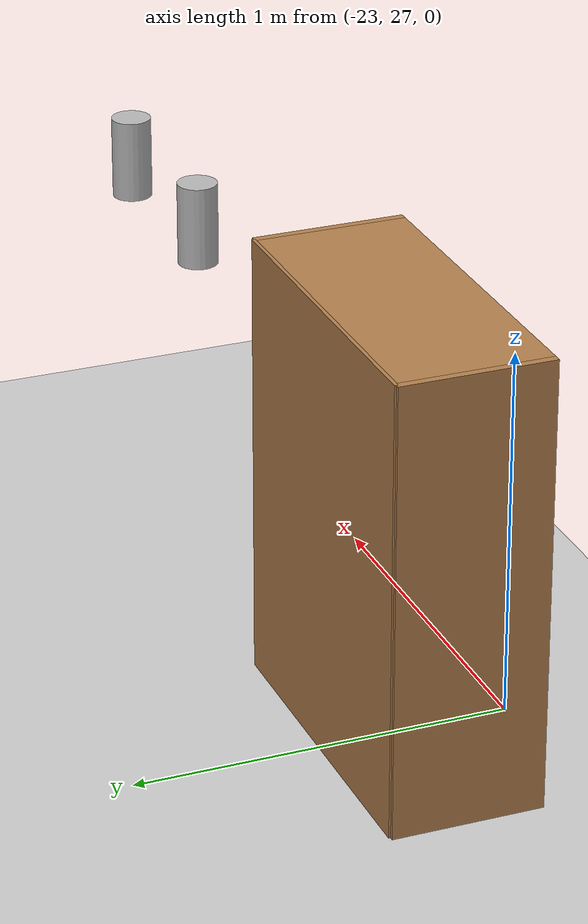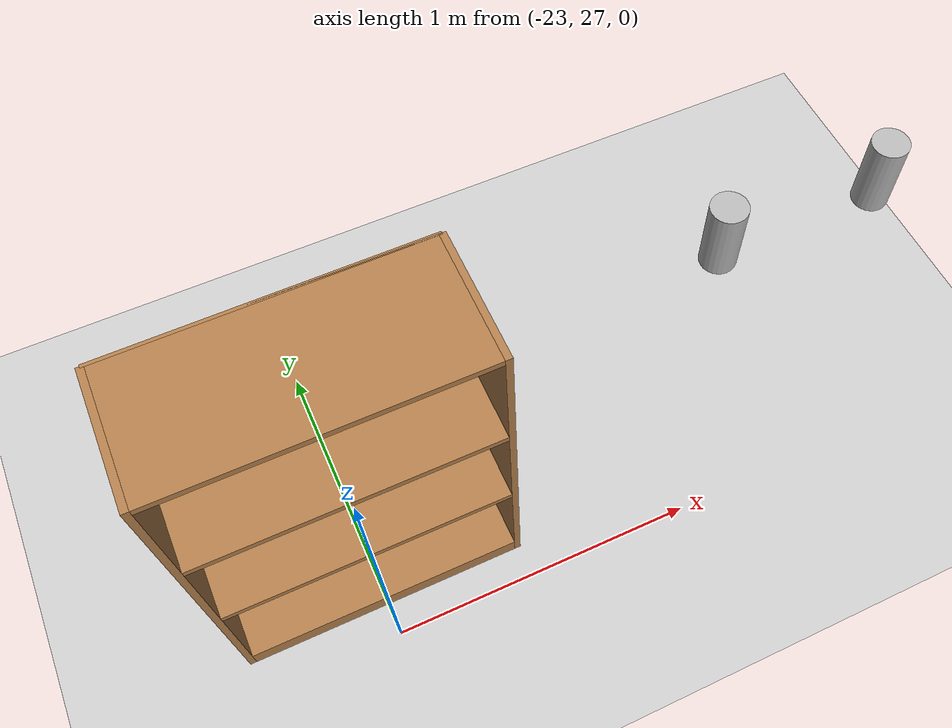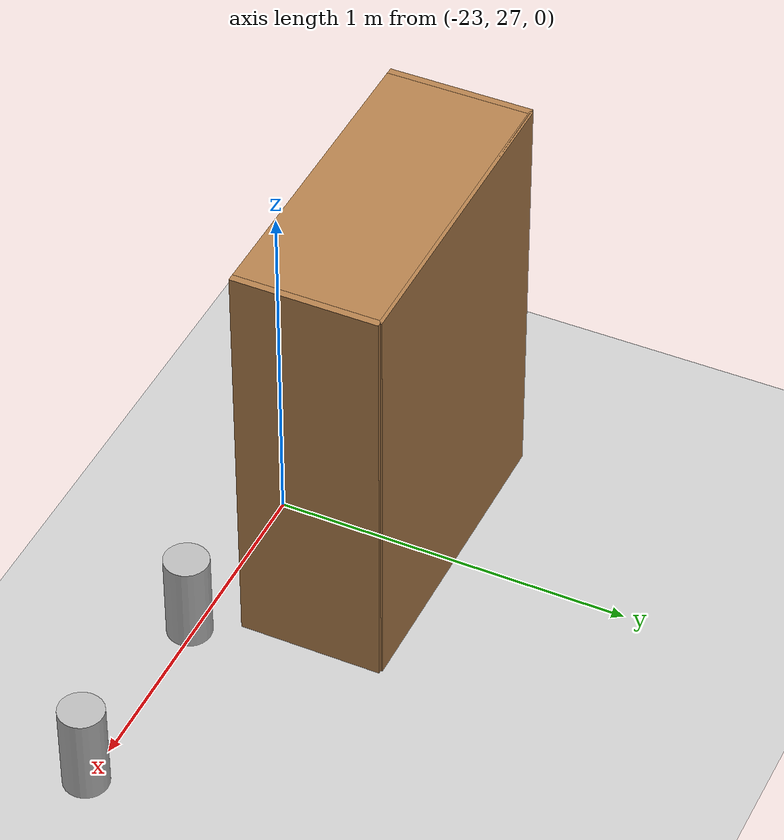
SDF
<sdf version="1.7">
 <world name="default">
  <model name="ground_plane">
   <static>1</static>
   <link name="link">
    <collision name="collision">
     <geometry><plane><normal>0 0 1</normal><size>100 100</size></plane></geometry>
     <surface>
      <contact><collide_bitmask>65535</collide_bitmask></contact>
      <friction><ode><mu>100</mu><mu2>50</mu2></ode></friction>
     </surface>
    </collision>
    <visual name="visual">
     <cast_shadows>0</cast_shadows>
     <geometry><plane><normal>0 0 1</normal><size>100 100</size></plane></geometry>
     <material>
      <script><uri>file://media/materials/scripts/gazebo.material</uri><name>Gazebo/Grey</name></script>
     </material>
    </visual>
   </link>
  </model>
  <model name="bookshelf_clone_clone_clone_3">
   <static>1</static>
   <link name="link">
    <inertial><mass>1</mass></inertial>
    <collision name="back">
     <pose>0 0.005 0.6 0 -0 0</pose>
     <geometry><box><size>0.9 0.01 1.2</size></box></geometry>
    </collision>
    <visual name="visual1">
     <pose>0 0.005 0.6 0 -0 0</pose>
     <geometry><box><size>0.9 0.01 1.2</size></box></geometry>
     <material>
      <script><uri>file://media/materials/scripts/gazebo.material</uri><name>Gazebo/Wood</name></script>
     </material>
    </visual>
    <collision name="left_side">
     <pose>0.45 -0.195 0.6 0 -0 0</pose>
     <geometry><box><size>0.02 0.4 1.2</size></box></geometry>
    </collision>
    <visual name="visual2">
     <pose>0.45 -0.195 0.6 0 -0 0</pose>
     <geometry><box><size>0.02 0.4 1.2</size></box></geometry>
     <material>
      <script><uri>file://media/materials/scripts/gazebo.material</uri><name>Gazebo/Wood</name></script>
     </material>
    </visual>
    <collision name="right_side">
     <pose>-0.45 -0.195 0.6 0 -0 0</pose>
     <geometry><box><size>0.02 0.4 1.2</size></box></geometry>
    </collision>
    <visual name="visual3">
     <pose>-0.45 -0.195 0.6 0 -0 0</pose>
     <geometry><box><size>0.02 0.4 1.2</size></box></geometry>
     <material>
      <script><uri>file://media/materials/scripts/gazebo.material</uri><name>Gazebo/Wood</name></script>
     </material>
    </visual>
    <collision name="bottom">
     <pose>0 -0.195 0.03 0 -0 0</pose>
     <geometry><box><size>0.88 0.4 0.06</size></box></geometry>
    </collision>
    <visual name="visual4">
     <pose>0 -0.195 0.03 0 -0 0</pose>
     <geometry><box><size>0.88 0.4 0.06</size></box></geometry>
     <material>
      <script><uri>file://media/materials/scripts/gazebo.material</uri><name>Gazebo/Wood</name></script>
     </material>
    </visual>
    <collision name="top">
     <pose>0 -0.195 1.19 0 -0 0</pose>
     <geometry><box><size>0.88 0.4 0.02</size></box></geometry>
    </collision>
    <visual name="visual5">
     <pose>0 -0.195 1.19 0 -0 0</pose>
     <geometry><box><size>0.88 0.4 0.02</size></box></geometry>
     <material>
      <script><uri>file://media/materials/scripts/gazebo.material</uri><name>Gazebo/Wood</name></script>
     </material>
    </visual>
    <collision name="low_shelf">
     <pose>0 -0.195 0.43 0 -0 0</pose>
     <geometry><box><size>0.88 0.4 0.02</size></box></geometry>
    </collision>
    <visual name="visual6">
     <pose>0 -0.195 0.43 0 -0 0</pose>
     <geometry><box><size>0.88 0.4 0.02</size></box></geometry>
     <material>
      <script><uri>file://media/materials/scripts/gazebo.material</uri><name>Gazebo/Wood</name></script>
     </material>
    </visual>
    <collision name="high_shelf">
     <pose>0 -0.195 0.8 0 -0 0</pose>
     <geometry><box><size>0.88 0.4 0.02</size></box></geometry>
    </collision>
    <visual name="visual7">
     <pose>0 -0.195 0.8 0 -0 0</pose>
     <geometry><box><size>0.88 0.4 0.02</size></box></geometry>
     <material>
      <script><uri>file://media/materials/scripts/gazebo.material</uri><name>Gazebo/Wood</name></script>
     </material>
    </visual>
   </link>
   <pose>-23 27.5 0 0 -0 0</pose>
  </model>
  <model name="beer_clone_9_clone_10_clone_0">
   <link name="link">
    <pose>0 0 0.115 0 -0 0</pose>
    <inertial>
     <mass>0.39</mass>
     <inertia><ixx>0.00058</ixx><ixy>0</ixy><ixz>0</ixz><iyy>0.00058</iyy><iyz>0</iyz><izz>0.00019</izz></inertia>
    </inertial>
    <collision name="collision">
     <geometry><cylinder><radius>0.055</radius><length>0.23</length></cylinder></geometry>
    </collision>
    <visual name="visual">
     <geometry><cylinder><radius>0.055</radius><length>0.23</length></cylinder></geometry>
     <material>
      <script>
       <uri>model://beer/materials/scripts</uri>
       <uri>model://beer/materials/textures</uri>
       <name>Beer/Diffuse</name>
      </script>
     </material>
    </visual>
   </link>
   <pose>-23.1601 27.3934 0.439991 1.1e-05 2e-06 0.005293</pose>
  </model>
  <model name="beer_clone_9_clone_9_clone_6_clone_5">
   <link name="link">
    <pose>0 0 0.115 0 -0 0</pose>
    <inertial>
     <mass>0.39</mass>
     <inertia><ixx>0.00058</ixx><ixy>0</ixy><ixz>0</ixz><iyy>0.00058</iyy><iyz>0</iyz><izz>0.00019</izz></inertia>
    </inertial>
    <collision name="collision">
     <geometry><cylinder><radius>0.055</radius><length>0.23</length></cylinder></geometry>
    </collision>
    <visual name="visual">
     <geometry><cylinder><radius>0.055</radius><length>0.23</length></cylinder></geometry>
     <material>
      <script>
       <uri>model://beer/materials/scripts</uri>
       <uri>model://beer/materials/textures</uri>
       <name>Beer/Diffuse</name>
      </script>
     </material>
    </visual>
   </link>
   <pose>-21.7846 27.3746 0.810001 -1e-06 2.7e-05 0.005355</pose>
  </model>
  <model name="beer_clone_9_clone_9_clone_6_clone_9">
   <link name="link">
    <pose>0 0 0.115 0 -0 0</pose>
    <inertial>
     <mass>0.39</mass>
     <inertia><ixx>0.00058</ixx><ixy>0</ixy><ixz>0</ixz><iyy>0.00058</iyy><iyz>0</iyz><izz>0.00019</izz></inertia>
    </inertial>
    <collision name="collision">
     <geometry><cylinder><radius>0.055</radius><length>0.23</length></cylinder></geometry>
    </collision>
    <visual name="visual">
     <geometry><cylinder><radius>0.055</radius><length>0.23</length></cylinder></geometry>
     <material>
      <script>
       <uri>model://beer/materials/scripts</uri>
       <uri>model://beer/materials/textures</uri>
       <name>Beer/Diffuse</name>
      </script>
     </material>
    </visual>
   </link>
   <pose>-21.2668 27.3812 0.809993 5.3e-05 -0 0.006446</pose>
  </model>
 </world>
</sdf>
